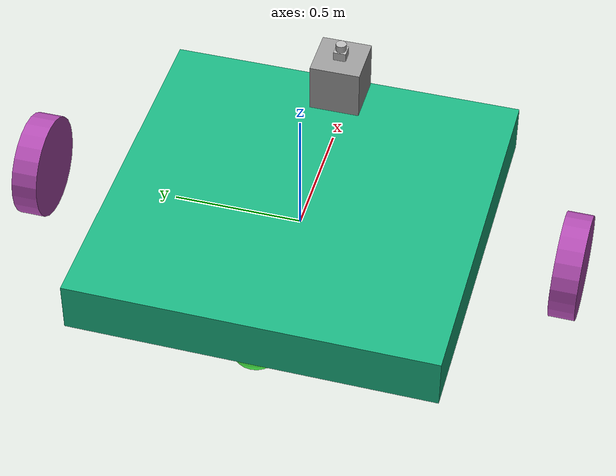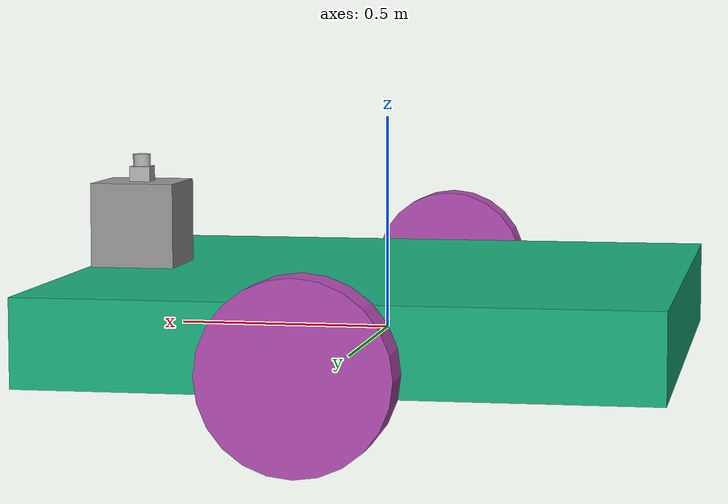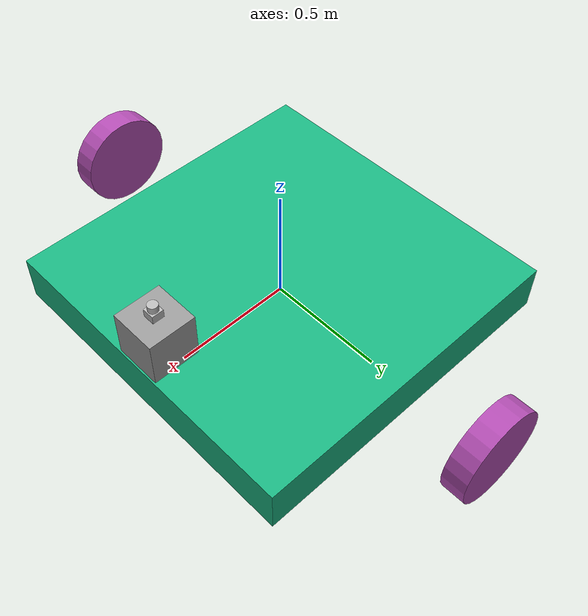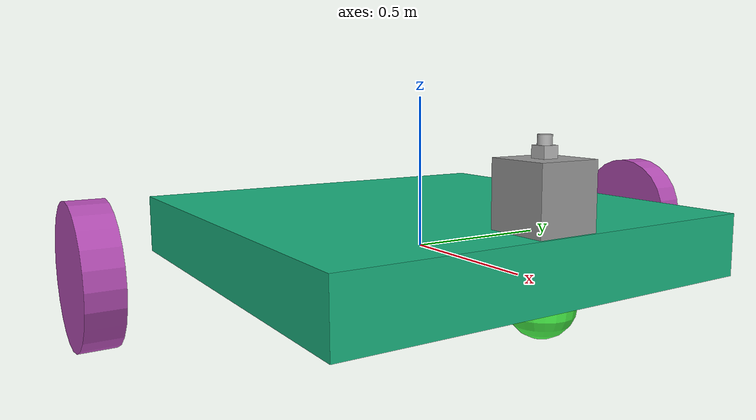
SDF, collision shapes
<?xml version='1.0'?>
<sdf version='1.6'>
  <model name='indoor_bot'>
    <link name='link_0'>
      <inertial>
        <mass>2</mass>
        <inertia>
          <ixx>0.339899</ixx>
          <ixy>0</ixy>
          <ixz>0</ixz>
          <iyy>0.339899</iyy>
          <iyz>0</iyz>
          <izz>0.666465</izz>
        </inertia>
        <pose frame=''>0 0 0 0 -0 0</pose>
      </inertial>
      <pose frame=''>-0 0 0.04 0 -0 0</pose>
      <gravity>1</gravity>
      <self_collide>0</self_collide>
      <kinematic>0</kinematic>
      <enable_wind>0</enable_wind>
      <visual name='visual'>
        <pose frame=''>0 0 0 0 -0 0</pose>
        <geometry>
          <cylinder>
            <radius>0.99</radius>
            <length>0.2</length>
          </cylinder>
        </geometry>
        <material>
          <lighting>1</lighting>
          <script>
            <uri>file://media/materials/scripts/gazebo.material</uri>
            <name>Gazebo/Grey</name>
          </script>
          <shader type='pixel'>
            <normal_map>__default__</normal_map>
          </shader>
          <ambient>0.1 0.7 0.5 1</ambient>
          <diffuse>0.7 0.7 0.7 1</diffuse>
          <specular>0.01 0.01 0.01 1</specular>
          <emissive>0 0 0 1</emissive>
        </material>
        <transparency>0</transparency>
        <cast_shadows>1</cast_shadows>
      </visual>
      <collision name='collision'>
        <laser_retro>0</laser_retro>
        <max_contacts>10</max_contacts>
        <pose frame=''>0 0 0 0 -0 0</pose>
        <geometry>
          <box>
            <size>1.414 1.414 0.2</size>
          </box>
        </geometry>
        <surface>
          <friction>
            <ode>
              <mu>1</mu>
              <mu2>1</mu2>
              <fdir1>0 0 0</fdir1>
              <slip1>0</slip1>
              <slip2>0</slip2>
            </ode>
            <torsional>
              <coefficient>1</coefficient>
              <patch_radius>0</patch_radius>
              <surface_radius>0</surface_radius>
              <use_patch_radius>1</use_patch_radius>
              <ode>
                <slip>0</slip>
              </ode>
            </torsional>
          </friction>
          <bounce>
            <restitution_coefficient>0</restitution_coefficient>
            <threshold>1e+06</threshold>
          </bounce>
          <contact>
            <collide_without_contact>0</collide_without_contact>
            <collide_without_contact_bitmask>1</collide_without_contact_bitmask>
            <collide_bitmask>1</collide_bitmask>
            <ode>
              <soft_cfm>0</soft_cfm>
              <soft_erp>0.2</soft_erp>
              <kp>1e+13</kp>
              <kd>1</kd>
              <max_vel>0.01</max_vel>
              <min_depth>0</min_depth>
            </ode>
            <bullet>
              <split_impulse>1</split_impulse>
              <split_impulse_penetration_threshold>-0.01</split_impulse_penetration_threshold>
              <soft_cfm>0</soft_cfm>
              <soft_erp>0.2</soft_erp>
              <kp>1e+13</kp>
              <kd>1</kd>
            </bullet>
          </contact>
        </surface>
      </collision>
    </link>
    <link name='hokuyo::link'>
      <inertial>
        <mass>0.1</mass>
        <pose frame=''>0 0 0 0 -0 0</pose>
        <inertia>
          <ixx>1</ixx>
          <ixy>0</ixy>
          <ixz>0</ixz>
          <iyy>1</iyy>
          <iyz>0</iyz>
          <izz>1</izz>
        </inertia>
      </inertial>
      <sensor name='laser' type='ray'>
        <pose frame=''>0.01 0 0.0175 0 -0 0</pose>
        <ray>
          <scan>
            <horizontal>
              <samples>640</samples>
              <resolution>1</resolution>
              <min_angle>-2.26889</min_angle>
              <max_angle>2.2689</max_angle>
            </horizontal>
            <vertical>
              <samples>1</samples>
              <min_angle>0</min_angle>
              <max_angle>0</max_angle>
            </vertical>
          </scan>
          <range>
            <min>0.08</min>
            <max>10</max>
            <resolution>0.01</resolution>
          </range>
        </ray>
        <plugin name='laser' filename='libRayPlugin.so'/>
        <always_on>1</always_on>
        <update_rate>30</update_rate>
        <visualize>1</visualize>
      </sensor>
      <pose frame=''>0.6 0 0.37 0 -0 0</pose>
      <self_collide>0</self_collide>
      <enable_wind>0</enable_wind>
      <kinematic>0</kinematic>
      <visual name='visual'>
        <geometry>
          <mesh>
            <uri>model://hokuyo/meshes/hokuyo.dae</uri>
          </mesh>
        </geometry>
        <material>
          <shader type='pixel'/>
        </material>
        <pose frame=''>0 0 0 0 -0 0</pose>
        <transparency>0</transparency>
        <cast_shadows>1</cast_shadows>
      </visual>
      <collision name='collision-base'>
        <laser_retro>0</laser_retro>
        <max_contacts>10</max_contacts>
        <pose frame=''>0 0 -0.0145 0 -0 0</pose>
        <geometry>
          <box>
            <size>0.05 0.05 0.041</size>
          </box>
        </geometry>
        <surface>
          <friction>
            <ode>
              <mu>1</mu>
              <mu2>1</mu2>
              <fdir1>0 0 0</fdir1>
              <slip1>0</slip1>
              <slip2>0</slip2>
            </ode>
            <torsional>
              <coefficient>1</coefficient>
              <patch_radius>0</patch_radius>
              <surface_radius>0</surface_radius>
              <use_patch_radius>1</use_patch_radius>
              <ode>
                <slip>0</slip>
              </ode>
            </torsional>
          </friction>
          <bounce>
            <restitution_coefficient>0</restitution_coefficient>
            <threshold>1e+06</threshold>
          </bounce>
          <contact>
            <collide_without_contact>0</collide_without_contact>
            <collide_without_contact_bitmask>1</collide_without_contact_bitmask>
            <collide_bitmask>1</collide_bitmask>
            <ode>
              <soft_cfm>0</soft_cfm>
              <soft_erp>0.2</soft_erp>
              <kp>1e+13</kp>
              <kd>1</kd>
              <max_vel>0.01</max_vel>
              <min_depth>0</min_depth>
            </ode>
            <bullet>
              <split_impulse>1</split_impulse>
              <split_impulse_penetration_threshold>-0.01</split_impulse_penetration_threshold>
              <soft_cfm>0</soft_cfm>
              <soft_erp>0.2</soft_erp>
              <kp>1e+13</kp>
              <kd>1</kd>
            </bullet>
          </contact>
        </surface>
      </collision>
      <collision name='collision-top'>
        <laser_retro>0</laser_retro>
        <max_contacts>10</max_contacts>
        <pose frame=''>0 0 0.0205 0 -0 0</pose>
        <geometry>
          <cylinder>
            <radius>0.021</radius>
            <length>0.029</length>
          </cylinder>
        </geometry>
        <surface>
          <friction>
            <ode>
              <mu>1</mu>
              <mu2>1</mu2>
              <fdir1>0 0 0</fdir1>
              <slip1>0</slip1>
              <slip2>0</slip2>
            </ode>
            <torsional>
              <coefficient>1</coefficient>
              <patch_radius>0</patch_radius>
              <surface_radius>0</surface_radius>
              <use_patch_radius>1</use_patch_radius>
              <ode>
                <slip>0</slip>
              </ode>
            </torsional>
          </friction>
          <bounce>
            <restitution_coefficient>0</restitution_coefficient>
            <threshold>1e+06</threshold>
          </bounce>
          <contact>
            <collide_without_contact>0</collide_without_contact>
            <collide_without_contact_bitmask>1</collide_without_contact_bitmask>
            <collide_bitmask>1</collide_bitmask>
            <ode>
              <soft_cfm>0</soft_cfm>
              <soft_erp>0.2</soft_erp>
              <kp>1e+13</kp>
              <kd>1</kd>
              <max_vel>0.01</max_vel>
              <min_depth>0</min_depth>
            </ode>
            <bullet>
              <split_impulse>1</split_impulse>
              <split_impulse_penetration_threshold>-0.01</split_impulse_penetration_threshold>
              <soft_cfm>0</soft_cfm>
              <soft_erp>0.2</soft_erp>
              <kp>1e+13</kp>
              <kd>1</kd>
            </bullet>
          </contact>
        </surface>
      </collision>
    </link>
    <link name='link_0_0'>
      <inertial>
        <mass>0.05</mass>
        <inertia>
          <ixx>0.00033333</ixx>
          <ixy>0</ixy>
          <ixz>0</ixz>
          <iyy>0.00033333</iyy>
          <iyz>0</iyz>
          <izz>0.00033333</izz>
        </inertia>
        <pose frame=''>0 0 0 0 -0 0</pose>
      </inertial>
      <pose frame=''>0.6 0 0.24 0 -0 0</pose>
      <gravity>1</gravity>
      <self_collide>0</self_collide>
      <kinematic>0</kinematic>
      <enable_wind>0</enable_wind>
      <visual name='visual'>
        <pose frame=''>0 0 0 0 -0 0</pose>
        <geometry>
          <box>
            <size>0.2 0.2 0.2</size>
          </box>
        </geometry>
        <material>
          <lighting>1</lighting>
          <script>
            <uri>file://media/materials/scripts/gazebo.material</uri>
            <name>Gazebo/Grey</name>
          </script>
          <shader type='pixel'>
            <normal_map>__default__</normal_map>
          </shader>
          <ambient>0.3 0.3 0.3 1</ambient>
          <diffuse>0.7 0.7 0.7 1</diffuse>
          <specular>0.01 0.01 0.01 1</specular>
          <emissive>0 0 0 1</emissive>
        </material>
        <transparency>0</transparency>
        <cast_shadows>1</cast_shadows>
      </visual>
      <collision name='collision'>
        <laser_retro>0</laser_retro>
        <max_contacts>10</max_contacts>
        <pose frame=''>0 0 0 0 -0 0</pose>
        <geometry>
          <box>
            <size>0.2 0.2 0.2</size>
          </box>
        </geometry>
        <surface>
          <friction>
            <ode>
              <mu>1</mu>
              <mu2>1</mu2>
              <fdir1>0 0 0</fdir1>
              <slip1>0</slip1>
              <slip2>0</slip2>
            </ode>
            <torsional>
              <coefficient>1</coefficient>
              <patch_radius>0</patch_radius>
              <surface_radius>0</surface_radius>
              <use_patch_radius>1</use_patch_radius>
              <ode>
                <slip>0</slip>
              </ode>
            </torsional>
          </friction>
          <bounce>
            <restitution_coefficient>0</restitution_coefficient>
            <threshold>1e+06</threshold>
          </bounce>
          <contact>
            <collide_without_contact>0</collide_without_contact>
            <collide_without_contact_bitmask>1</collide_without_contact_bitmask>
            <collide_bitmask>1</collide_bitmask>
            <ode>
              <soft_cfm>0</soft_cfm>
              <soft_erp>0.2</soft_erp>
              <kp>1e+13</kp>
              <kd>1</kd>
              <max_vel>0.01</max_vel>
              <min_depth>0</min_depth>
            </ode>
            <bullet>
              <split_impulse>1</split_impulse>
              <split_impulse_penetration_threshold>-0.01</split_impulse_penetration_threshold>
              <soft_cfm>0</soft_cfm>
              <soft_erp>0.2</soft_erp>
              <kp>1e+13</kp>
              <kd>1</kd>
            </bullet>
          </contact>
        </surface>
      </collision>
    </link>
    <link name='link_1'>
      <inertial>
        <mass>0.2</mass>
        <inertia>
          <ixx>0.00216667</ixx>
          <ixy>0</ixy>
          <ixz>0</ixz>
          <iyy>0.00216667</iyy>
          <iyz>0</iyz>
          <izz>0.004</izz>
        </inertia>
        <pose frame=''>0 0 0 0 -0 0</pose>
      </inertial>
      <pose frame=''>-0 -1.05 0.04 1.5708 -0 0</pose>
      <gravity>1</gravity>
      <self_collide>0</self_collide>
      <kinematic>0</kinematic>
      <enable_wind>0</enable_wind>
      <visual name='visual'>
        <pose frame=''>0 0 0 0 -0 0</pose>
        <geometry>
          <cylinder>
            <radius>0.2</radius>
            <length>0.1</length>
          </cylinder>
        </geometry>
        <material>
          <lighting>1</lighting>
          <script>
            <uri>file://media/materials/scripts/gazebo.material</uri>
            <name>Gazebo/Grey</name>
          </script>
          <shader type='pixel'>
            <normal_map>__default__</normal_map>
          </shader>
          <ambient>0.7 0.3 0.7 1</ambient>
          <diffuse>0.7 0.7 0.7 1</diffuse>
          <specular>0.01 0.01 0.01 1</specular>
          <emissive>0 0 0 1</emissive>
        </material>
        <transparency>0</transparency>
        <cast_shadows>1</cast_shadows>
      </visual>
      <collision name='collision'>
        <laser_retro>0</laser_retro>
        <max_contacts>10</max_contacts>
        <pose frame=''>0 0 0 0 -0 0</pose>
        <geometry>
          <cylinder>
            <radius>0.2</radius>
            <length>0.1</length>
          </cylinder>
        </geometry>
        <surface>
          <friction>
            <ode>
              <mu>1</mu>
              <mu2>1</mu2>
              <fdir1>0 0 0</fdir1>
              <slip1>0</slip1>
              <slip2>0</slip2>
            </ode>
            <torsional>
              <coefficient>1</coefficient>
              <patch_radius>0</patch_radius>
              <surface_radius>0</surface_radius>
              <use_patch_radius>1</use_patch_radius>
              <ode>
                <slip>0</slip>
              </ode>
            </torsional>
          </friction>
          <bounce>
            <restitution_coefficient>0</restitution_coefficient>
            <threshold>1e+06</threshold>
          </bounce>
          <contact>
            <collide_without_contact>0</collide_without_contact>
            <collide_without_contact_bitmask>1</collide_without_contact_bitmask>
            <collide_bitmask>1</collide_bitmask>
            <ode>
              <soft_cfm>0</soft_cfm>
              <soft_erp>0.2</soft_erp>
              <kp>1e+13</kp>
              <kd>1</kd>
              <max_vel>0.01</max_vel>
              <min_depth>0</min_depth>
            </ode>
            <bullet>
              <split_impulse>1</split_impulse>
              <split_impulse_penetration_threshold>-0.01</split_impulse_penetration_threshold>
              <soft_cfm>0</soft_cfm>
              <soft_erp>0.2</soft_erp>
              <kp>1e+13</kp>
              <kd>1</kd>
            </bullet>
          </contact>
        </surface>
      </collision>
    </link>
    <link name='link_1_clone'>
      <inertial>
        <mass>0.2</mass>
        <inertia>
          <ixx>0.00216667</ixx>
          <ixy>0</ixy>
          <ixz>0</ixz>
          <iyy>0.00216667</iyy>
          <iyz>0</iyz>
          <izz>0.004</izz>
        </inertia>
        <pose frame=''>0 0 0 0 -0 0</pose>
      </inertial>
      <pose frame=''>0 1.05 0.04 1.5708 -0 0</pose>
      <gravity>1</gravity>
      <self_collide>0</self_collide>
      <kinematic>0</kinematic>
      <enable_wind>0</enable_wind>
      <visual name='visual'>
        <pose frame=''>0 0 0 0 -0 0</pose>
        <geometry>
          <cylinder>
            <radius>0.2</radius>
            <length>0.1</length>
          </cylinder>
        </geometry>
        <material>
          <lighting>1</lighting>
          <script>
            <uri>file://media/materials/scripts/gazebo.material</uri>
            <name>Gazebo/Grey</name>
          </script>
          <shader type='pixel'>
            <normal_map>__default__</normal_map>
          </shader>
          <ambient>0.7 0.3 0.7 1</ambient>
          <diffuse>0.7 0.7 0.7 1</diffuse>
          <specular>0.01 0.01 0.01 1</specular>
          <emissive>0 0 0 1</emissive>
        </material>
        <transparency>0</transparency>
        <cast_shadows>1</cast_shadows>
      </visual>
      <collision name='collision'>
        <laser_retro>0</laser_retro>
        <max_contacts>10</max_contacts>
        <pose frame=''>0 0 0 0 -0 0</pose>
        <geometry>
          <cylinder>
            <radius>0.2</radius>
            <length>0.1</length>
          </cylinder>
        </geometry>
        <surface>
          <friction>
            <ode>
              <mu>1</mu>
              <mu2>1</mu2>
              <fdir1>0 0 0</fdir1>
              <slip1>0</slip1>
              <slip2>0</slip2>
            </ode>
            <torsional>
              <coefficient>1</coefficient>
              <patch_radius>0</patch_radius>
              <surface_radius>0</surface_radius>
              <use_patch_radius>1</use_patch_radius>
              <ode>
                <slip>0</slip>
              </ode>
            </torsional>
          </friction>
          <bounce>
            <restitution_coefficient>0</restitution_coefficient>
            <threshold>1e+06</threshold>
          </bounce>
          <contact>
            <collide_without_contact>0</collide_without_contact>
            <collide_without_contact_bitmask>1</collide_without_contact_bitmask>
            <collide_bitmask>1</collide_bitmask>
            <ode>
              <soft_cfm>0</soft_cfm>
              <soft_erp>0.2</soft_erp>
              <kp>1e+13</kp>
              <kd>1</kd>
              <max_vel>0.01</max_vel>
              <min_depth>0</min_depth>
            </ode>
            <bullet>
              <split_impulse>1</split_impulse>
              <split_impulse_penetration_threshold>-0.01</split_impulse_penetration_threshold>
              <soft_cfm>0</soft_cfm>
              <soft_erp>0.2</soft_erp>
              <kp>1e+13</kp>
              <kd>1</kd>
            </bullet>
          </contact>
        </surface>
      </collision>
    </link>
    <link name='link_2'>
      <inertial>
        <mass>0.1</mass>
        <inertia>
          <ixx>0.0004</ixx>
          <ixy>0</ixy>
          <ixz>0</ixz>
          <iyy>0.0004</iyy>
          <iyz>0</iyz>
          <izz>0.0004</izz>
        </inertia>
        <pose frame=''>0 0 0 0 -0 0</pose>
      </inertial>
      <pose frame=''>-0.6 -0 -0.06 0 -0 0</pose>
      <gravity>1</gravity>
      <self_collide>0</self_collide>
      <kinematic>0</kinematic>
      <enable_wind>0</enable_wind>
      <visual name='visual'>
        <pose frame=''>0 0 0 0 -0 0</pose>
        <geometry>
          <sphere>
            <radius>0.1</radius>
          </sphere>
        </geometry>
        <material>
          <lighting>1</lighting>
          <script>
            <uri>file://media/materials/scripts/gazebo.material</uri>
            <name>Gazebo/Grey</name>
          </script>
          <shader type='pixel'>
            <normal_map>__default__</normal_map>
          </shader>
          <ambient>0.3 1 0.3 1</ambient>
          <diffuse>0.7 0.7 0.7 1</diffuse>
          <specular>0.01 0.01 0.01 1</specular>
          <emissive>0 0 0 1</emissive>
        </material>
        <transparency>0</transparency>
        <cast_shadows>1</cast_shadows>
      </visual>
      <collision name='collision'>
        <laser_retro>0</laser_retro>
        <max_contacts>10</max_contacts>
        <pose frame=''>0 0 0 0 -0 0</pose>
        <geometry>
          <sphere>
            <radius>0.1</radius>
          </sphere>
        </geometry>
        <surface>
          <friction>
            <ode>
              <mu>0</mu>
              <mu2>0</mu2>
              <fdir1>0 0 0</fdir1>
              <slip1>0</slip1>
              <slip2>0</slip2>
            </ode>
            <torsional>
              <coefficient>1</coefficient>
              <patch_radius>0</patch_radius>
              <surface_radius>0</surface_radius>
              <use_patch_radius>1</use_patch_radius>
              <ode>
                <slip>0</slip>
              </ode>
            </torsional>
          </friction>
          <bounce>
            <restitution_coefficient>0</restitution_coefficient>
            <threshold>1e+06</threshold>
          </bounce>
          <contact>
            <collide_without_contact>0</collide_without_contact>
            <collide_without_contact_bitmask>1</collide_without_contact_bitmask>
            <collide_bitmask>1</collide_bitmask>
            <ode>
              <soft_cfm>0</soft_cfm>
              <soft_erp>0.2</soft_erp>
              <kp>1e+13</kp>
              <kd>1</kd>
              <max_vel>0.01</max_vel>
              <min_depth>0</min_depth>
            </ode>
            <bullet>
              <split_impulse>1</split_impulse>
              <split_impulse_penetration_threshold>-0.01</split_impulse_penetration_threshold>
              <soft_cfm>0</soft_cfm>
              <soft_erp>0.2</soft_erp>
              <kp>1e+13</kp>
              <kd>1</kd>
            </bullet>
          </contact>
        </surface>
      </collision>
    </link>
    <link name='link_2_clone'>
      <inertial>
        <mass>0.1</mass>
        <inertia>
          <ixx>0.0004</ixx>
          <ixy>0</ixy>
          <ixz>0</ixz>
          <iyy>0.0004</iyy>
          <iyz>0</iyz>
          <izz>0.0004</izz>
        </inertia>
        <pose frame=''>0 0 0 0 -0 0</pose>
      </inertial>
      <pose frame=''>0.6 0 -0.06 0 -0 0</pose>
      <gravity>1</gravity>
      <self_collide>0</self_collide>
      <kinematic>0</kinematic>
      <enable_wind>0</enable_wind>
      <visual name='visual'>
        <pose frame=''>0 0 0 0 -0 0</pose>
        <geometry>
          <sphere>
            <radius>0.1</radius>
          </sphere>
        </geometry>
        <material>
          <lighting>1</lighting>
          <script>
            <uri>file://media/materials/scripts/gazebo.material</uri>
            <name>Gazebo/Grey</name>
          </script>
          <shader type='pixel'>
            <normal_map>__default__</normal_map>
          </shader>
          <ambient>0.3 1 0.3 1</ambient>
          <diffuse>0.7 0.7 0.7 1</diffuse>
          <specular>0.01 0.01 0.01 1</specular>
          <emissive>0 0 0 1</emissive>
        </material>
        <transparency>0</transparency>
        <cast_shadows>1</cast_shadows>
      </visual>
      <collision name='collision'>
        <laser_retro>0</laser_retro>
        <max_contacts>10</max_contacts>
        <pose frame=''>0 0 0 0 -0 0</pose>
        <geometry>
          <sphere>
            <radius>0.1</radius>
          </sphere>
        </geometry>
        <surface>
          <friction>
            <ode>
              <mu>1</mu>
              <mu2>1</mu2>
              <fdir1>0 0 0</fdir1>
              <slip1>0</slip1>
              <slip2>0</slip2>
            </ode>
            <torsional>
              <coefficient>1</coefficient>
              <patch_radius>0</patch_radius>
              <surface_radius>0</surface_radius>
              <use_patch_radius>1</use_patch_radius>
              <ode>
                <slip>0</slip>
              </ode>
            </torsional>
          </friction>
          <bounce>
            <restitution_coefficient>0</restitution_coefficient>
            <threshold>1e+06</threshold>
          </bounce>
          <contact>
            <collide_without_contact>0</collide_without_contact>
            <collide_without_contact_bitmask>1</collide_without_contact_bitmask>
            <collide_bitmask>1</collide_bitmask>
            <ode>
              <soft_cfm>0</soft_cfm>
              <soft_erp>0.2</soft_erp>
              <kp>1e+13</kp>
              <kd>1</kd>
              <max_vel>0.01</max_vel>
              <min_depth>0</min_depth>
            </ode>
            <bullet>
              <split_impulse>1</split_impulse>
              <split_impulse_penetration_threshold>-0.01</split_impulse_penetration_threshold>
              <soft_cfm>0</soft_cfm>
              <soft_erp>0.2</soft_erp>
              <kp>1e+13</kp>
              <kd>1</kd>
            </bullet>
          </contact>
        </surface>
      </collision>
    </link>
    <joint name='hokuyo_joint' type='fixed'>
      <parent>link_0</parent>
      <child>hokuyo::link</child>
      <pose frame=''>0 0 0 0 -0 0</pose>
      <physics>
        <ode>
          <limit>
            <cfm>0</cfm>
            <erp>0.2</erp>
          </limit>
          <suspension>
            <cfm>0</cfm>
            <erp>0.2</erp>
          </suspension>
        </ode>
      </physics>
    </joint>
    <joint name='link_0_JOINT_0_0' type='fixed'>
      <parent>link_0</parent>
      <child>link_0_0</child>
      <pose frame=''>0 0 0 0 -0 0</pose>
      <physics>
        <ode>
          <limit>
            <cfm>0</cfm>
            <erp>0.2</erp>
          </limit>
          <suspension>
            <cfm>0</cfm>
            <erp>0.2</erp>
          </suspension>
        </ode>
      </physics>
    </joint>
    <joint name='link_0_JOINT_0' type='revolute'>
      <parent>link_0</parent>
      <child>link_1</child>
      <pose frame=''>0 0 0 0 -0 0</pose>
      <axis>
        <xyz>0 0 1</xyz>
        <use_parent_model_frame>0</use_parent_model_frame>
        <limit>
          <lower>-1.79769e+308</lower>
          <upper>1.79769e+308</upper>
          <effort>-1</effort>
          <velocity>-1</velocity>
        </limit>
        <dynamics>
          <spring_reference>0</spring_reference>
          <spring_stiffness>0</spring_stiffness>
          <damping>0</damping>
          <friction>0</friction>
        </dynamics>
      </axis>
      <physics>
        <ode>
          <limit>
            <cfm>0</cfm>
            <erp>0.2</erp>
          </limit>
          <suspension>
            <cfm>0</cfm>
            <erp>0.2</erp>
          </suspension>
        </ode>
      </physics>
    </joint>
    <joint name='link_0_JOINT_1' type='revolute'>
      <parent>link_0</parent>
      <child>link_1_clone</child>
      <pose frame=''>0 0 0 0 -0 0</pose>
      <axis>
        <xyz>0 0 1</xyz>
        <use_parent_model_frame>0</use_parent_model_frame>
        <limit>
          <lower>-1.79769e+308</lower>
          <upper>1.79769e+308</upper>
          <effort>-1</effort>
          <velocity>-1</velocity>
        </limit>
        <dynamics>
          <spring_reference>0</spring_reference>
          <spring_stiffness>0</spring_stiffness>
          <damping>0</damping>
          <friction>0</friction>
        </dynamics>
      </axis>
      <physics>
        <ode>
          <limit>
            <cfm>0</cfm>
            <erp>0.2</erp>
          </limit>
          <suspension>
            <cfm>0</cfm>
            <erp>0.2</erp>
          </suspension>
        </ode>
      </physics>
    </joint>
    <joint name='link_0_JOINT_2' type='fixed'>
      <parent>link_0</parent>
      <child>link_2_clone</child>
      <pose frame=''>0 0 0 0 -0 0</pose>
      <physics>
        <ode>
          <limit>
            <cfm>0</cfm>
            <erp>0.2</erp>
          </limit>
          <suspension>
            <cfm>0</cfm>
            <erp>0.2</erp>
          </suspension>
        </ode>
      </physics>
    </joint>
    <joint name='link_0_JOINT_3' type='fixed'>
      <parent>link_0</parent>
      <child>link_2</child>
      <pose frame=''>0 0 0 0 -0 0</pose>
      <physics>
        <ode>
          <limit>
            <cfm>0</cfm>
            <erp>0.2</erp>
          </limit>
          <suspension>
            <cfm>0</cfm>
            <erp>0.2</erp>
          </suspension>
        </ode>
      </physics>
    </joint>
    <static>0</static>
    <allow_auto_disable>1</allow_auto_disable>
  </model>
</sdf>
